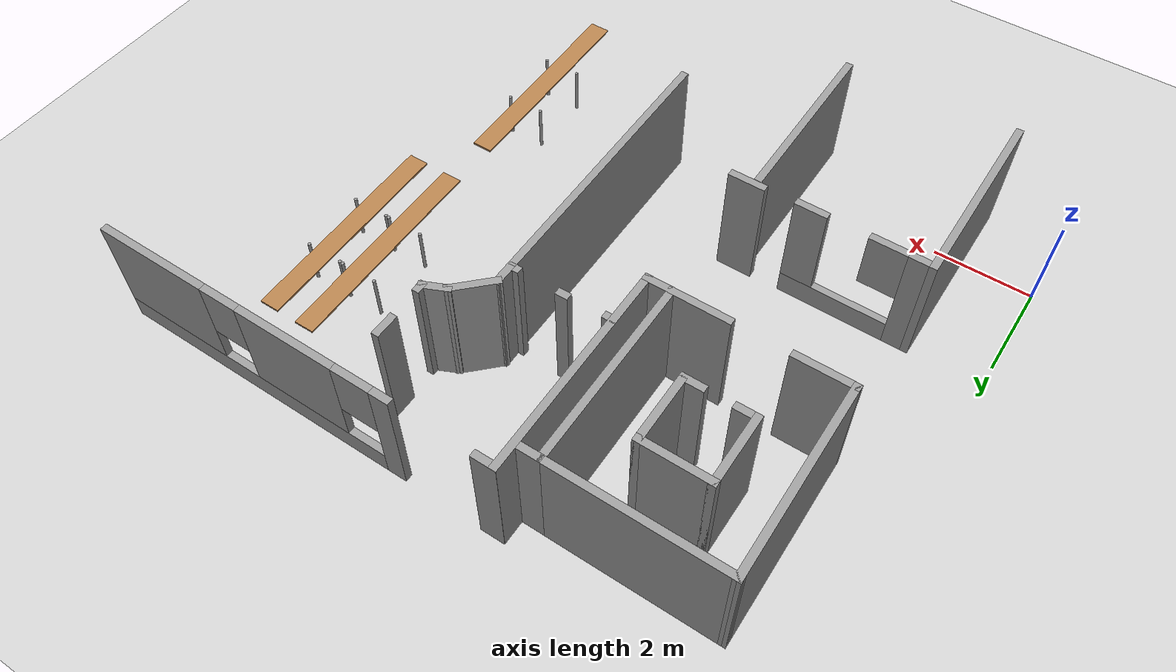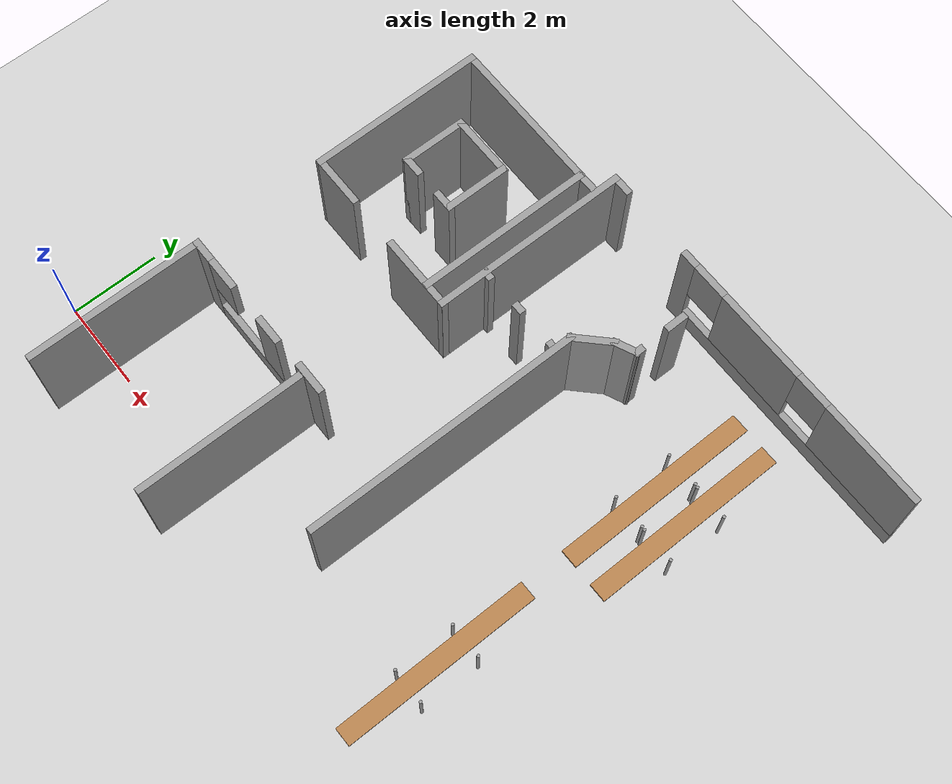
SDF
<sdf version="1.6">
 <world name="default">
  <model name="ground_plane">
   <static>1</static>
   <link name="link">
    <collision name="collision">
     <geometry><plane><normal>0 0 1</normal><size>100 100</size></plane></geometry>
     <surface><friction><ode><mu>100</mu><mu2>50</mu2></ode></friction></surface>
    </collision>
    <visual name="visual">
     <cast_shadows>0</cast_shadows>
     <geometry><plane><normal>0 0 1</normal><size>100 100</size></plane></geometry>
     <material>
      <script><uri>file://media/materials/scripts/gazebo.material</uri><name>Gazebo/Grey</name></script>
     </material>
    </visual>
   </link>
  </model>
  <model name="Parte_DX_(visione_alta_mappa)_CV1">
   <pose>7.84951 -6.02799 0 0 -0 0</pose>
   <link name="Wall_0">
    <collision name="Wall_0_Collision">
     <geometry><box><size>3.5 0.15 2.5</size></box></geometry>
     <pose>0 0 1.25 0 -0 0</pose>
    </collision>
    <visual name="Wall_0_Visual">
     <pose>0 0 1.25 0 -0 0</pose>
     <geometry><box><size>3.5 0.15 2.5</size></box></geometry>
     <material>
      <script><uri>file://media/materials/scripts/gazebo.material</uri><name>Gazebo/Grey</name></script>
      <ambient>1 1 1 1</ambient>
     </material>
    </visual>
    <pose>-4.6353 15.3082 0 0 -0 0</pose>
   </link>
   <link name="Wall_132">
    <collision name="Wall_132_Collision">
     <geometry><box><size>0.25 0.15 2.5</size></box></geometry>
     <pose>0 0 1.25 0 -0 0</pose>
    </collision>
    <visual name="Wall_132_Visual">
     <pose>0 0 1.25 0 -0 0</pose>
     <geometry><box><size>0.25 0.15 2.5</size></box></geometry>
     <material>
      <script><uri>file://media/materials/scripts/gazebo.material</uri><name>Gazebo/Grey</name></script>
      <ambient>1 1 1 1</ambient>
     </material>
    </visual>
    <pose>-1.36627 12.5347 0 0 -0 0</pose>
   </link>
   <link name="Wall_134">
    <collision name="Wall_134_Collision">
     <geometry><box><size>0.25 0.15 2.5</size></box></geometry>
     <pose>0 0 1.25 0 -0 0</pose>
    </collision>
    <visual name="Wall_134_Visual">
     <pose>0 0 1.25 0 -0 0</pose>
     <geometry><box><size>0.25 0.15 2.5</size></box></geometry>
     <material>
      <script><uri>file://media/materials/scripts/gazebo.material</uri><name>Gazebo/Grey</name></script>
      <ambient>1 1 1 1</ambient>
     </material>
    </visual>
    <pose>-0.351158 12.5347 0 0 -0 3.14159</pose>
   </link>
   <link name="Wall_136">
    <collision name="Wall_136_Collision">
     <geometry><box><size>0.25 0.15 2.5</size></box></geometry>
     <pose>0 0 1.25 0 -0 0</pose>
    </collision>
    <visual name="Wall_136_Visual">
     <pose>0 0 1.25 0 -0 0</pose>
     <geometry><box><size>0.25 0.15 2.5</size></box></geometry>
     <material>
      <script><uri>file://media/materials/scripts/gazebo.material</uri><name>Gazebo/Grey</name></script>
      <ambient>1 1 1 1</ambient>
     </material>
    </visual>
    <pose>-2.28438 12.5087 0 0 -0 0</pose>
   </link>
   <link name="Wall_180">
    <collision name="Wall_180_Collision">
     <geometry><box><size>0.75 0.15 2.5</size></box></geometry>
     <pose>0 0 1.25 0 -0 0</pose>
    </collision>
    <visual name="Wall_180_Visual">
     <pose>0 0 1.25 0 -0 0</pose>
     <geometry><box><size>0.75 0.15 2.5</size></box></geometry>
     <material>
      <script><uri>file://media/materials/scripts/gazebo.material</uri><name>Gazebo/Grey</name></script>
      <ambient>1 1 1 1</ambient>
     </material>
    </visual>
    <pose>-2.68898 8.54555 0 0 -0 3.14159</pose>
   </link>
   <link name="Wall_185">
    <collision name="Wall_185_Collision">
     <geometry><box><size>4 0.15 2.5</size></box></geometry>
     <pose>0 0 1.25 0 -0 0</pose>
    </collision>
    <visual name="Wall_185_Visual">
     <pose>0 0 1.25 0 -0 0</pose>
     <geometry><box><size>4 0.15 2.5</size></box></geometry>
     <material>
      <script><uri>file://media/materials/scripts/gazebo.material</uri><name>Gazebo/Grey</name></script>
      <ambient>1 1 1 1</ambient>
     </material>
    </visual>
    <pose>-6.31785 6.58238 0 0 -0 1.5708</pose>
   </link>
   <link name="Wall_187">
    <pose>-5.01785 8.50738 0 0 -0 0</pose>
    <visual name="Wall_187_Visual_0">
     <pose>-1.10572 0 1.25 0 -0 0</pose>
     <geometry><box><size>0.538566 0.15 2.5</size></box></geometry>
     <material>
      <script><uri>file://media/materials/scripts/gazebo.material</uri><name>Gazebo/Grey</name></script>
      <ambient>1 1 1 1</ambient>
     </material>
    </visual>
    <collision name="Wall_187_Collision_0">
     <geometry><box><size>0.538566 0.15 2.5</size></box></geometry>
     <pose>-1.10572 0 1.25 0 -0 0</pose>
    </collision>
    <visual name="Wall_187_Visual_1">
     <pose>0.269283 0 0.25 0 -0 0</pose>
     <geometry><box><size>2.21143 0.15 0.5</size></box></geometry>
     <material>
      <script><uri>file://media/materials/scripts/gazebo.material</uri><name>Gazebo/Grey</name></script>
      <ambient>1 1 1 1</ambient>
     </material>
    </visual>
    <collision name="Wall_187_Collision_1">
     <geometry><box><size>2.21143 0.15 0.5</size></box></geometry>
     <pose>0.269283 0 0.25 0 -0 0</pose>
    </collision>
    <visual name="Wall_187_Visual_2">
     <pose>1.04664 0 1.5 0 -0 0</pose>
     <geometry><box><size>0.656719 0.15 2</size></box></geometry>
     <material>
      <script><uri>file://media/materials/scripts/gazebo.material</uri><name>Gazebo/Grey</name></script>
      <ambient>1 1 1 1</ambient>
     </material>
    </visual>
    <collision name="Wall_187_Collision_2">
     <geometry><box><size>0.656719 0.15 2</size></box></geometry>
     <pose>1.04664 0 1.5 0 -0 0</pose>
    </collision>
    <visual name="Wall_187_Visual_3">
     <pose>-0.459077 0 1.9 0 -0 0</pose>
     <geometry><box><size>0.754714 0.15 1.2</size></box></geometry>
     <material>
      <script><uri>file://media/materials/scripts/gazebo.material</uri><name>Gazebo/Grey</name></script>
      <ambient>1 1 1 1</ambient>
     </material>
    </visual>
    <collision name="Wall_187_Collision_3">
     <geometry><box><size>0.754714 0.15 1.2</size></box></geometry>
     <pose>-0.459077 0 1.9 0 -0 0</pose>
    </collision>
   </link>
   <link name="Wall_189">
    <collision name="Wall_189_Collision">
     <geometry><box><size>3.75 0.15 2.5</size></box></geometry>
     <pose>0 0 1.25 0 -0 0</pose>
    </collision>
    <visual name="Wall_189_Visual">
     <pose>0 0 1.25 0 -0 0</pose>
     <geometry><box><size>3.75 0.15 2.5</size></box></geometry>
     <material>
      <script><uri>file://media/materials/scripts/gazebo.material</uri><name>Gazebo/Grey</name></script>
      <ambient>1 1 1 1</ambient>
     </material>
    </visual>
    <pose>-2.84357 6.58911 0 0 0 -1.5708</pose>
   </link>
   <link name="Wall_2">
    <collision name="Wall_2_Collision">
     <geometry><box><size>1.25 0.15 2.5</size></box></geometry>
     <pose>0 0 1.25 0 -0 0</pose>
    </collision>
    <visual name="Wall_2_Visual">
     <pose>0 0 1.25 0 -0 0</pose>
     <geometry><box><size>1.25 0.15 2.5</size></box></geometry>
     <material>
      <script><uri>file://media/materials/scripts/gazebo.material</uri><name>Gazebo/Grey</name></script>
      <ambient>1 1 1 1</ambient>
     </material>
    </visual>
    <pose>-5.73743 11.466 0 0 -0 0</pose>
   </link>
   <link name="Wall_22">
    <pose>2.9365 15.8002 0 0 -0 0</pose>
    <visual name="Wall_22_Visual_0">
     <pose>-3.04792 0 1.25 0 -0 0</pose>
     <geometry><box><size>0.404156 0.15 2.5</size></box></geometry>
     <material>
      <script><uri>file://media/materials/scripts/gazebo.material</uri><name>Gazebo/Grey</name></script>
      <ambient>1 1 1 1</ambient>
     </material>
    </visual>
    <collision name="Wall_22_Collision_0">
     <geometry><box><size>0.404156 0.15 2.5</size></box></geometry>
     <pose>-3.04792 0 1.25 0 -0 0</pose>
    </collision>
    <visual name="Wall_22_Visual_1">
     <pose>0.202078 0 0.25 0 -0 0</pose>
     <geometry><box><size>6.09584 0.15 0.5</size></box></geometry>
     <material>
      <script><uri>file://media/materials/scripts/gazebo.material</uri><name>Gazebo/Grey</name></script>
      <ambient>1 1 1 1</ambient>
     </material>
    </visual>
    <collision name="Wall_22_Collision_1">
     <geometry><box><size>6.09584 0.15 0.5</size></box></geometry>
     <pose>0.202078 0 0.25 0 -0 0</pose>
    </collision>
    <visual name="Wall_22_Visual_2">
     <pose>-0.994727 0 1.5 0 -0 0</pose>
     <geometry><box><size>2.10223 0.15 2</size></box></geometry>
     <material>
      <script><uri>file://media/materials/scripts/gazebo.material</uri><name>Gazebo/Grey</name></script>
      <ambient>1 1 1 1</ambient>
     </material>
    </visual>
    <collision name="Wall_22_Collision_2">
     <geometry><box><size>2.10223 0.15 2</size></box></geometry>
     <pose>-0.994727 0 1.5 0 -0 0</pose>
    </collision>
    <visual name="Wall_22_Visual_3">
     <pose>2.0532 0 1.5 0 -0 0</pose>
     <geometry><box><size>2.39361 0.15 2</size></box></geometry>
     <material>
      <script><uri>file://media/materials/scripts/gazebo.material</uri><name>Gazebo/Grey</name></script>
      <ambient>1 1 1 1</ambient>
     </material>
    </visual>
    <collision name="Wall_22_Collision_3">
     <geometry><box><size>2.39361 0.15 2</size></box></geometry>
     <pose>2.0532 0 1.5 0 -0 0</pose>
    </collision>
    <visual name="Wall_22_Visual_4">
     <pose>-2.44584 0 1.9 0 -0 0</pose>
     <geometry><box><size>0.8 0.15 1.2</size></box></geometry>
     <material>
      <script><uri>file://media/materials/scripts/gazebo.material</uri><name>Gazebo/Grey</name></script>
      <ambient>1 1 1 1</ambient>
     </material>
    </visual>
    <collision name="Wall_22_Collision_4">
     <geometry><box><size>0.8 0.15 1.2</size></box></geometry>
     <pose>-2.44584 0 1.9 0 -0 0</pose>
    </collision>
    <visual name="Wall_22_Visual_5">
     <pose>0.45639 0 1.9 0 -0 0</pose>
     <geometry><box><size>0.8 0.15 1.2</size></box></geometry>
     <material>
      <script><uri>file://media/materials/scripts/gazebo.material</uri><name>Gazebo/Grey</name></script>
      <ambient>1 1 1 1</ambient>
     </material>
    </visual>
    <collision name="Wall_22_Collision_5">
     <geometry><box><size>0.8 0.15 1.2</size></box></geometry>
     <pose>0.45639 0 1.9 0 -0 0</pose>
    </collision>
   </link>
   <link name="Wall_33">
    <collision name="Wall_33_Collision">
     <geometry><box><size>0.5 0.15 2.5</size></box></geometry>
     <pose>0 0 1.25 0 -0 0</pose>
    </collision>
    <visual name="Wall_33_Visual">
     <pose>0 0 1.25 0 -0 0</pose>
     <geometry><box><size>0.5 0.15 2.5</size></box></geometry>
     <material>
      <script><uri>file://media/materials/scripts/gazebo.material</uri><name>Gazebo/Grey</name></script>
      <ambient>1 1 1 1</ambient>
     </material>
    </visual>
    <pose>-2.67047 15.3073 0 0 -0 3.14159</pose>
   </link>
   <link name="Wall_39">
    <collision name="Wall_39_Collision">
     <geometry><box><size>0.5 0.15 2.5</size></box></geometry>
     <pose>0 0 1.25 0 -0 0</pose>
    </collision>
    <visual name="Wall_39_Visual">
     <pose>0 0 1.25 0 -0 0</pose>
     <geometry><box><size>0.5 0.15 2.5</size></box></geometry>
     <material>
      <script><uri>file://media/materials/scripts/gazebo.material</uri><name>Gazebo/Grey</name></script>
      <ambient>1 1 1 1</ambient>
     </material>
    </visual>
    <pose>-2.17837 15.8078 0 0 -0 0</pose>
   </link>
   <link name="Wall_4">
    <collision name="Wall_4_Collision">
     <geometry><box><size>1.75 0.15 2.5</size></box></geometry>
     <pose>0 0 1.25 0 -0 0</pose>
    </collision>
    <visual name="Wall_4_Visual">
     <pose>0 0 1.25 0 -0 0</pose>
     <geometry><box><size>1.75 0.15 2.5</size></box></geometry>
     <material>
      <script><uri>file://media/materials/scripts/gazebo.material</uri><name>Gazebo/Grey</name></script>
      <ambient>1 1 1 1</ambient>
     </material>
    </visual>
    <pose>-3.15533 11.4584 0 0 -0 0</pose>
   </link>
   <link name="Wall_43">
    <collision name="Wall_43_Collision">
     <geometry><box><size>3.99225 0.15 2.5</size></box></geometry>
     <pose>0 0 1.25 0 -0 0</pose>
    </collision>
    <visual name="Wall_43_Visual">
     <pose>0 0 1.25 0 -0 0</pose>
     <geometry><box><size>3.99225 0.15 2.5</size></box></geometry>
     <material>
      <script><uri>file://media/materials/scripts/gazebo.material</uri><name>Gazebo/Grey</name></script>
      <ambient>1 1 1 1</ambient>
     </material>
    </visual>
    <pose>-6.29886 13.3871 0 0 0 -1.56484</pose>
   </link>
   <link name="Wall_45">
    <collision name="Wall_45_Collision">
     <geometry><box><size>4.5 0.15 2.5</size></box></geometry>
     <pose>0 0 1.25 0 -0 0</pose>
    </collision>
    <visual name="Wall_45_Visual">
     <pose>0 0 1.25 0 -0 0</pose>
     <geometry><box><size>4.5 0.15 2.5</size></box></geometry>
     <material>
      <script><uri>file://media/materials/scripts/gazebo.material</uri><name>Gazebo/Grey</name></script>
      <ambient>1 1 1 1</ambient>
     </material>
    </visual>
    <pose>-2.35621 13.6319 0 0 0 -1.5708</pose>
   </link>
   <link name="Wall_57">
    <collision name="Wall_57_Collision">
     <geometry><box><size>1.5 0.15 2.5</size></box></geometry>
     <pose>0 0 1.25 0 -0 0</pose>
    </collision>
    <visual name="Wall_57_Visual">
     <pose>0 0 1.25 0 -0 0</pose>
     <geometry><box><size>1.5 0.15 2.5</size></box></geometry>
     <material>
      <script><uri>file://media/materials/scripts/gazebo.material</uri><name>Gazebo/Grey</name></script>
      <ambient>1 1 1 1</ambient>
     </material>
    </visual>
    <pose>-4.57569 14.1901 0 0 -0 0</pose>
   </link>
   <link name="Wall_60">
    <collision name="Wall_60_Collision">
     <geometry><box><size>1.5 0.15 2.5</size></box></geometry>
     <pose>0 0 1.25 0 -0 0</pose>
    </collision>
    <visual name="Wall_60_Visual">
     <pose>0 0 1.25 0 -0 0</pose>
     <geometry><box><size>1.5 0.15 2.5</size></box></geometry>
     <material>
      <script><uri>file://media/materials/scripts/gazebo.material</uri><name>Gazebo/Grey</name></script>
      <ambient>1 1 1 1</ambient>
     </material>
    </visual>
    <pose>-3.90069 13.5151 0 0 0 -1.5708</pose>
   </link>
   <link name="Wall_62">
    <collision name="Wall_62_Collision">
     <geometry><box><size>1.5 0.15 2.5</size></box></geometry>
     <pose>0 0 1.25 0 -0 0</pose>
    </collision>
    <visual name="Wall_62_Visual">
     <pose>0 0 1.25 0 -0 0</pose>
     <geometry><box><size>1.5 0.15 2.5</size></box></geometry>
     <material>
      <script><uri>file://media/materials/scripts/gazebo.material</uri><name>Gazebo/Grey</name></script>
      <ambient>1 1 1 1</ambient>
     </material>
    </visual>
    <pose>-5.25069 13.5151 0 0 0 -1.5708</pose>
   </link>
   <link name="Wall_64">
    <collision name="Wall_64_Collision">
     <geometry><box><size>0.5 0.15 2.5</size></box></geometry>
     <pose>0 0 1.25 0 -0 0</pose>
    </collision>
    <visual name="Wall_64_Visual">
     <pose>0 0 1.25 0 -0 0</pose>
     <geometry><box><size>0.5 0.15 2.5</size></box></geometry>
     <material>
      <script><uri>file://media/materials/scripts/gazebo.material</uri><name>Gazebo/Grey</name></script>
      <ambient>1 1 1 1</ambient>
     </material>
    </visual>
    <pose>-5.07569 12.8401 0 0 -0 0</pose>
   </link>
   <link name="Wall_66">
    <collision name="Wall_66_Collision">
     <geometry><box><size>0.5 0.15 2.5</size></box></geometry>
     <pose>0 0 1.25 0 -0 0</pose>
    </collision>
    <visual name="Wall_66_Visual">
     <pose>0 0 1.25 0 -0 0</pose>
     <geometry><box><size>0.5 0.15 2.5</size></box></geometry>
     <material>
      <script><uri>file://media/materials/scripts/gazebo.material</uri><name>Gazebo/Grey</name></script>
      <ambient>1 1 1 1</ambient>
     </material>
    </visual>
    <pose>-4.07569 12.8401 0 0 -0 3.14159</pose>
   </link>
   <link name="Wall_7">
    <collision name="Wall_7_Collision">
     <geometry><box><size>3.98011 0.15 2.5</size></box></geometry>
     <pose>0 0 1.25 0 -0 0</pose>
    </collision>
    <visual name="Wall_7_Visual">
     <pose>0 0 1.25 0 -0 0</pose>
     <geometry><box><size>3.98011 0.15 2.5</size></box></geometry>
     <material>
      <script><uri>file://media/materials/scripts/gazebo.material</uri><name>Gazebo/Grey</name></script>
      <ambient>1 1 1 1</ambient>
     </material>
    </visual>
    <pose>-2.84547 13.3872 0 0 0 -1.5708</pose>
   </link>
   <link name="Wall_81">
    <collision name="Wall_81_Collision">
     <geometry><box><size>0.5 0.15 2.5</size></box></geometry>
     <pose>0 0 1.25 0 -0 0</pose>
    </collision>
    <visual name="Wall_81_Visual">
     <pose>0 0 1.25 0 -0 0</pose>
     <geometry><box><size>0.5 0.15 2.5</size></box></geometry>
     <material>
      <script><uri>file://media/materials/scripts/gazebo.material</uri><name>Gazebo/Grey</name></script>
      <ambient>1 1 1 1</ambient>
     </material>
    </visual>
    <pose>0.724497 14.7006 0 0 0 -1.5708</pose>
   </link>
   <link name="Wall_83">
    <collision name="Wall_83_Collision">
     <geometry><box><size>0.25 0.15 2.5</size></box></geometry>
     <pose>0 0 1.25 0 -0 0</pose>
    </collision>
    <visual name="Wall_83_Visual">
     <pose>0 0 1.25 0 -0 0</pose>
     <geometry><box><size>0.25 0.15 2.5</size></box></geometry>
     <material>
      <script><uri>file://media/materials/scripts/gazebo.material</uri><name>Gazebo/Grey</name></script>
      <ambient>1 1 1 1</ambient>
     </material>
    </visual>
    <pose>0.735648 13.7547 0 0 -0 1.5708</pose>
   </link>
   <link name="Wall_85">
    <collision name="Wall_85_Collision">
     <geometry><box><size>1 0.15 2.5</size></box></geometry>
     <pose>0 0 1.25 0 -0 0</pose>
    </collision>
    <visual name="Wall_85_Visual">
     <pose>0 0 1.25 0 -0 0</pose>
     <geometry><box><size>1 0.15 2.5</size></box></geometry>
     <material>
      <script><uri>file://media/materials/scripts/gazebo.material</uri><name>Gazebo/Grey</name></script>
      <ambient>1 1 1 1</ambient>
     </material>
    </visual>
    <pose>0.021957 13.2154 0 0 -0 0.785398</pose>
   </link>
   <link name="Wall_86">
    <collision name="Wall_86_Collision">
     <geometry><box><size>0.604255 0.15 2.5</size></box></geometry>
     <pose>0 0 1.25 0 -0 0</pose>
    </collision>
    <visual name="Wall_86_Visual">
     <pose>0 0 1.25 0 -0 0</pose>
     <geometry><box><size>0.604255 0.15 2.5</size></box></geometry>
     <material>
      <script><uri>file://media/materials/scripts/gazebo.material</uri><name>Gazebo/Grey</name></script>
      <ambient>1 1 1 1</ambient>
     </material>
    </visual>
    <pose>0.529062 13.6103 0 0 -0 0.428581</pose>
   </link>
   <link name="Wall_88">
    <collision name="Wall_88_Collision">
     <geometry><box><size>6.25 0.15 2.5</size></box></geometry>
     <pose>0 0 1.25 0 -0 0</pose>
    </collision>
    <visual name="Wall_88_Visual">
     <pose>0 0 1.25 0 -0 0</pose>
     <geometry><box><size>6.25 0.15 2.5</size></box></geometry>
     <material>
      <script><uri>file://media/materials/scripts/gazebo.material</uri><name>Gazebo/Grey</name></script>
      <ambient>1 1 1 1</ambient>
     </material>
    </visual>
    <pose>-0.278564 9.86488 0 0 0 -1.5708</pose>
   </link>
   <static>1</static>
  </model>
  <model name="tablesclass_clone_20">
   <link name="link">
    <inertial>
     <inertia><ixx>0</ixx><ixy>0</ixy><ixz>0</ixz><iyy>0</iyy><iyz>0</iyz><izz>0</izz></inertia>
     <mass>1.73923</mass>
    </inertial>
    <visual name="front_right_leg">
     <pose>0.68 -0.38 0.5 0 -0 0</pose>
     <geometry><cylinder><radius>0.0324505</radius><length>1</length></cylinder></geometry>
     <material>
      <script><uri>file://media/materials/scripts/gazebo.material</uri><name>Gazebo/Grey</name></script>
      <ambient>0.3 0.3 0.3 1</ambient>
      <diffuse>0.7 0.7 0.7 1</diffuse>
      <specular>0.01 0.01 0.01 1</specular>
      <emissive>0 0 0 1</emissive>
     </material>
    </visual>
    <visual name="back_left_leg">
     <pose>-0.68 0.38 0.5 0 -0 0</pose>
     <geometry><cylinder><radius>0.0324505</radius><length>1</length></cylinder></geometry>
     <material>
      <script><uri>file://media/materials/scripts/gazebo.material</uri><name>Gazebo/Grey</name></script>
      <ambient>0.3 0.3 0.3 1</ambient>
      <diffuse>0.7 0.7 0.7 1</diffuse>
      <specular>0.01 0.01 0.01 1</specular>
      <emissive>0 0 0 1</emissive>
     </material>
    </visual>
    <visual name="front_left_leg">
     <pose>0.68 0.38 0.5 0 -0 0</pose>
     <geometry><cylinder><radius>0.0324505</radius><length>1</length></cylinder></geometry>
     <material>
      <script><uri>file://media/materials/scripts/gazebo.material</uri><name>Gazebo/Grey</name></script>
      <ambient>0.3 0.3 0.3 1</ambient>
      <diffuse>0.7 0.7 0.7 1</diffuse>
      <specular>0.01 0.01 0.01 1</specular>
      <emissive>0 0 0 1</emissive>
     </material>
    </visual>
    <visual name="visual1">
     <pose>0 0 1 0 -0 0</pose>
     <geometry><box><size>4.38513 0.412326 0.04</size></box></geometry>
     <material>
      <script><uri>file://media/materials/scripts/gazebo.material</uri><name>Gazebo/Wood</name></script>
      <ambient>1 1 1 1</ambient>
      <diffuse>1 1 1 1</diffuse>
      <specular>0.2 0.2 0.2 1</specular>
      <emissive>0 0 0 1</emissive>
     </material>
    </visual>
    <visual name="back_right_leg">
     <pose>-0.68 -0.38 0.5 0 -0 0</pose>
     <geometry><cylinder><radius>0.0324505</radius><length>1</length></cylinder></geometry>
     <material>
      <script><uri>file://media/materials/scripts/gazebo.material</uri><name>Gazebo/Grey</name></script>
      <ambient>0.3 0.3 0.3 1</ambient>
      <diffuse>0.7 0.7 0.7 1</diffuse>
      <specular>0.01 0.01 0.01 1</specular>
      <emissive>0 0 0 1</emissive>
     </material>
    </visual>
    <collision name="front_left_leg">
     <pose>0.68 0.38 0.5 0 -0 0</pose>
     <geometry><cylinder><radius>0.03245</radius><length>1</length></cylinder></geometry>
     <surface>
      <friction>
       <ode><mu>1</mu><mu2>1</mu2><fdir1>0 0 0</fdir1><slip1>0</slip1><slip2>0</slip2></ode>
       <torsional>
        <coefficient>1</coefficient>
        <patch_radius>0</patch_radius>
        <surface_radius>0</surface_radius>
        <use_patch_radius>1</use_patch_radius>
        <ode><slip>0</slip></ode>
       </torsional>
      </friction>
      <bounce><restitution_coefficient>0</restitution_coefficient><threshold>1e+06</threshold></bounce>
      <contact>
       <collide_without_contact>0</collide_without_contact>
       <collide_without_contact_bitmask>1</collide_without_contact_bitmask>
       <collide_bitmask>1</collide_bitmask>
       <ode>
        <soft_cfm>0</soft_cfm>
        <soft_erp>0.2</soft_erp>
        <kp>1e+13</kp>
        <kd>1</kd>
        <max_vel>0.01</max_vel>
        <min_depth>0</min_depth>
       </ode>
       <bullet>
        <split_impulse>1</split_impulse>
        <split_impulse_penetration_threshold>-0.01</split_impulse_penetration_threshold>
        <soft_cfm>0</soft_cfm>
        <soft_erp>0.2</soft_erp>
        <kp>1e+13</kp>
        <kd>1</kd>
       </bullet>
      </contact>
     </surface>
    </collision>
    <collision name="front_right_leg">
     <pose>0.68 -0.38 0.5 0 -0 0</pose>
     <geometry><cylinder><radius>0.03245</radius><length>1</length></cylinder></geometry>
     <surface>
      <friction>
       <ode><mu>1</mu><mu2>1</mu2><fdir1>0 0 0</fdir1><slip1>0</slip1><slip2>0</slip2></ode>
       <torsional>
        <coefficient>1</coefficient>
        <patch_radius>0</patch_radius>
        <surface_radius>0</surface_radius>
        <use_patch_radius>1</use_patch_radius>
        <ode><slip>0</slip></ode>
       </torsional>
      </friction>
      <bounce><restitution_coefficient>0</restitution_coefficient><threshold>1e+06</threshold></bounce>
      <contact>
       <collide_without_contact>0</collide_without_contact>
       <collide_without_contact_bitmask>1</collide_without_contact_bitmask>
       <collide_bitmask>1</collide_bitmask>
       <ode>
        <soft_cfm>0</soft_cfm>
        <soft_erp>0.2</soft_erp>
        <kp>1e+13</kp>
        <kd>1</kd>
        <max_vel>0.01</max_vel>
        <min_depth>0</min_depth>
       </ode>
       <bullet>
        <split_impulse>1</split_impulse>
        <split_impulse_penetration_threshold>-0.01</split_impulse_penetration_threshold>
        <soft_cfm>0</soft_cfm>
        <soft_erp>0.2</soft_erp>
        <kp>1e+13</kp>
        <kd>1</kd>
       </bullet>
      </contact>
     </surface>
    </collision>
    <collision name="back_left_leg">
     <pose>-0.68 0.38 0.5 0 -0 0</pose>
     <geometry><cylinder><radius>0.03245</radius><length>1</length></cylinder></geometry>
     <surface>
      <friction>
       <ode><mu>1</mu><mu2>1</mu2><fdir1>0 0 0</fdir1><slip1>0</slip1><slip2>0</slip2></ode>
       <torsional>
        <coefficient>1</coefficient>
        <patch_radius>0</patch_radius>
        <surface_radius>0</surface_radius>
        <use_patch_radius>1</use_patch_radius>
        <ode><slip>0</slip></ode>
       </torsional>
      </friction>
      <bounce><restitution_coefficient>0</restitution_coefficient><threshold>1e+06</threshold></bounce>
      <contact>
       <collide_without_contact>0</collide_without_contact>
       <collide_without_contact_bitmask>1</collide_without_contact_bitmask>
       <collide_bitmask>1</collide_bitmask>
       <ode>
        <soft_cfm>0</soft_cfm>
        <soft_erp>0.2</soft_erp>
        <kp>1e+13</kp>
        <kd>1</kd>
        <max_vel>0.01</max_vel>
        <min_depth>0</min_depth>
       </ode>
       <bullet>
        <split_impulse>1</split_impulse>
        <split_impulse_penetration_threshold>-0.01</split_impulse_penetration_threshold>
        <soft_cfm>0</soft_cfm>
        <soft_erp>0.2</soft_erp>
        <kp>1e+13</kp>
        <kd>1</kd>
       </bullet>
      </contact>
     </surface>
    </collision>
    <collision name="back_right_leg">
     <pose>-0.68 -0.38 0.5 0 -0 0</pose>
     <geometry><cylinder><radius>0.03245</radius><length>1</length></cylinder></geometry>
     <surface>
      <friction>
       <ode><mu>1</mu><mu2>1</mu2><fdir1>0 0 0</fdir1><slip1>0</slip1><slip2>0</slip2></ode>
       <torsional>
        <coefficient>1</coefficient>
        <patch_radius>0</patch_radius>
        <surface_radius>0</surface_radius>
        <use_patch_radius>1</use_patch_radius>
        <ode><slip>0</slip></ode>
       </torsional>
      </friction>
      <bounce><restitution_coefficient>0</restitution_coefficient><threshold>1e+06</threshold></bounce>
      <contact>
       <collide_without_contact>0</collide_without_contact>
       <collide_without_contact_bitmask>1</collide_without_contact_bitmask>
       <collide_bitmask>1</collide_bitmask>
       <ode>
        <soft_cfm>0</soft_cfm>
        <soft_erp>0.2</soft_erp>
        <kp>1e+13</kp>
        <kd>1</kd>
        <max_vel>0.01</max_vel>
        <min_depth>0</min_depth>
       </ode>
       <bullet>
        <split_impulse>1</split_impulse>
        <split_impulse_penetration_threshold>-0.01</split_impulse_penetration_threshold>
        <soft_cfm>0</soft_cfm>
        <soft_erp>0.2</soft_erp>
        <kp>1e+13</kp>
        <kd>1</kd>
       </bullet>
      </contact>
     </surface>
    </collision>
    <collision name="surface">
     <pose>0 0 1 0 -0 0</pose>
     <geometry><box><size>4.69836 0.412326 0.03</size></box></geometry>
     <surface>
      <friction>
       <ode><mu>0.6</mu><mu2>0.6</mu2><fdir1>0 0 0</fdir1><slip1>0</slip1><slip2>0</slip2></ode>
       <torsional>
        <coefficient>1</coefficient>
        <patch_radius>0</patch_radius>
        <surface_radius>0</surface_radius>
        <use_patch_radius>1</use_patch_radius>
        <ode><slip>0</slip></ode>
       </torsional>
      </friction>
      <bounce><restitution_coefficient>0</restitution_coefficient><threshold>1e+06</threshold></bounce>
      <contact>
       <collide_without_contact>0</collide_without_contact>
       <collide_without_contact_bitmask>1</collide_without_contact_bitmask>
       <collide_bitmask>1</collide_bitmask>
       <ode>
        <soft_cfm>0</soft_cfm>
        <soft_erp>0.2</soft_erp>
        <kp>1e+13</kp>
        <kd>1</kd>
        <max_vel>0.01</max_vel>
        <min_depth>0</min_depth>
       </ode>
       <bullet>
        <split_impulse>1</split_impulse>
        <split_impulse_penetration_threshold>-0.01</split_impulse_penetration_threshold>
        <soft_cfm>0</soft_cfm>
        <soft_erp>0.2</soft_erp>
        <kp>1e+13</kp>
        <kd>1</kd>
       </bullet>
      </contact>
     </surface>
    </collision>
   </link>
   <static>0</static>
   <pose>10.6333 1.24513 -3e-06 -0 -3e-06 -1.56373</pose>
  </model>
  <model name="tablesclass_clone_21">
   <link name="link">
    <inertial>
     <inertia><ixx>0</ixx><ixy>0</ixy><ixz>0</ixz><iyy>0</iyy><iyz>0</iyz><izz>0</izz></inertia>
     <mass>1.73923</mass>
    </inertial>
    <visual name="front_right_leg">
     <pose>0.68 -0.38 0.5 0 -0 0</pose>
     <geometry><cylinder><radius>0.0324505</radius><length>1</length></cylinder></geometry>
     <material>
      <script><uri>file://media/materials/scripts/gazebo.material</uri><name>Gazebo/Grey</name></script>
      <ambient>0.3 0.3 0.3 1</ambient>
      <diffuse>0.7 0.7 0.7 1</diffuse>
      <specular>0.01 0.01 0.01 1</specular>
      <emissive>0 0 0 1</emissive>
     </material>
    </visual>
    <visual name="back_left_leg">
     <pose>-0.68 0.38 0.5 0 -0 0</pose>
     <geometry><cylinder><radius>0.0324505</radius><length>1</length></cylinder></geometry>
     <material>
      <script><uri>file://media/materials/scripts/gazebo.material</uri><name>Gazebo/Grey</name></script>
      <ambient>0.3 0.3 0.3 1</ambient>
      <diffuse>0.7 0.7 0.7 1</diffuse>
      <specular>0.01 0.01 0.01 1</specular>
      <emissive>0 0 0 1</emissive>
     </material>
    </visual>
    <visual name="front_left_leg">
     <pose>0.68 0.38 0.5 0 -0 0</pose>
     <geometry><cylinder><radius>0.0324505</radius><length>1</length></cylinder></geometry>
     <material>
      <script><uri>file://media/materials/scripts/gazebo.material</uri><name>Gazebo/Grey</name></script>
      <ambient>0.3 0.3 0.3 1</ambient>
      <diffuse>0.7 0.7 0.7 1</diffuse>
      <specular>0.01 0.01 0.01 1</specular>
      <emissive>0 0 0 1</emissive>
     </material>
    </visual>
    <visual name="visual1">
     <pose>0 0 1 0 -0 0</pose>
     <geometry><box><size>4.38513 0.412326 0.04</size></box></geometry>
     <material>
      <script><uri>file://media/materials/scripts/gazebo.material</uri><name>Gazebo/Wood</name></script>
      <ambient>1 1 1 1</ambient>
      <diffuse>1 1 1 1</diffuse>
      <specular>0.2 0.2 0.2 1</specular>
      <emissive>0 0 0 1</emissive>
     </material>
    </visual>
    <visual name="back_right_leg">
     <pose>-0.68 -0.38 0.5 0 -0 0</pose>
     <geometry><cylinder><radius>0.0324505</radius><length>1</length></cylinder></geometry>
     <material>
      <script><uri>file://media/materials/scripts/gazebo.material</uri><name>Gazebo/Grey</name></script>
      <ambient>0.3 0.3 0.3 1</ambient>
      <diffuse>0.7 0.7 0.7 1</diffuse>
      <specular>0.01 0.01 0.01 1</specular>
      <emissive>0 0 0 1</emissive>
     </material>
    </visual>
    <collision name="front_left_leg">
     <pose>0.68 0.38 0.5 0 -0 0</pose>
     <geometry><cylinder><radius>0.03245</radius><length>1</length></cylinder></geometry>
     <surface>
      <friction>
       <ode><mu>1</mu><mu2>1</mu2><fdir1>0 0 0</fdir1><slip1>0</slip1><slip2>0</slip2></ode>
       <torsional>
        <coefficient>1</coefficient>
        <patch_radius>0</patch_radius>
        <surface_radius>0</surface_radius>
        <use_patch_radius>1</use_patch_radius>
        <ode><slip>0</slip></ode>
       </torsional>
      </friction>
      <bounce><restitution_coefficient>0</restitution_coefficient><threshold>1e+06</threshold></bounce>
      <contact>
       <collide_without_contact>0</collide_without_contact>
       <collide_without_contact_bitmask>1</collide_without_contact_bitmask>
       <collide_bitmask>1</collide_bitmask>
       <ode>
        <soft_cfm>0</soft_cfm>
        <soft_erp>0.2</soft_erp>
        <kp>1e+13</kp>
        <kd>1</kd>
        <max_vel>0.01</max_vel>
        <min_depth>0</min_depth>
       </ode>
       <bullet>
        <split_impulse>1</split_impulse>
        <split_impulse_penetration_threshold>-0.01</split_impulse_penetration_threshold>
        <soft_cfm>0</soft_cfm>
        <soft_erp>0.2</soft_erp>
        <kp>1e+13</kp>
        <kd>1</kd>
       </bullet>
      </contact>
     </surface>
    </collision>
    <collision name="front_right_leg">
     <pose>0.68 -0.38 0.5 0 -0 0</pose>
     <geometry><cylinder><radius>0.03245</radius><length>1</length></cylinder></geometry>
     <surface>
      <friction>
       <ode><mu>1</mu><mu2>1</mu2><fdir1>0 0 0</fdir1><slip1>0</slip1><slip2>0</slip2></ode>
       <torsional>
        <coefficient>1</coefficient>
        <patch_radius>0</patch_radius>
        <surface_radius>0</surface_radius>
        <use_patch_radius>1</use_patch_radius>
        <ode><slip>0</slip></ode>
       </torsional>
      </friction>
      <bounce><restitution_coefficient>0</restitution_coefficient><threshold>1e+06</threshold></bounce>
      <contact>
       <collide_without_contact>0</collide_without_contact>
       <collide_without_contact_bitmask>1</collide_without_contact_bitmask>
       <collide_bitmask>1</collide_bitmask>
       <ode>
        <soft_cfm>0</soft_cfm>
        <soft_erp>0.2</soft_erp>
        <kp>1e+13</kp>
        <kd>1</kd>
        <max_vel>0.01</max_vel>
        <min_depth>0</min_depth>
       </ode>
       <bullet>
        <split_impulse>1</split_impulse>
        <split_impulse_penetration_threshold>-0.01</split_impulse_penetration_threshold>
        <soft_cfm>0</soft_cfm>
        <soft_erp>0.2</soft_erp>
        <kp>1e+13</kp>
        <kd>1</kd>
       </bullet>
      </contact>
     </surface>
    </collision>
    <collision name="back_left_leg">
     <pose>-0.68 0.38 0.5 0 -0 0</pose>
     <geometry><cylinder><radius>0.03245</radius><length>1</length></cylinder></geometry>
     <surface>
      <friction>
       <ode><mu>1</mu><mu2>1</mu2><fdir1>0 0 0</fdir1><slip1>0</slip1><slip2>0</slip2></ode>
       <torsional>
        <coefficient>1</coefficient>
        <patch_radius>0</patch_radius>
        <surface_radius>0</surface_radius>
        <use_patch_radius>1</use_patch_radius>
        <ode><slip>0</slip></ode>
       </torsional>
      </friction>
      <bounce><restitution_coefficient>0</restitution_coefficient><threshold>1e+06</threshold></bounce>
      <contact>
       <collide_without_contact>0</collide_without_contact>
       <collide_without_contact_bitmask>1</collide_without_contact_bitmask>
       <collide_bitmask>1</collide_bitmask>
       <ode>
        <soft_cfm>0</soft_cfm>
        <soft_erp>0.2</soft_erp>
        <kp>1e+13</kp>
        <kd>1</kd>
        <max_vel>0.01</max_vel>
        <min_depth>0</min_depth>
       </ode>
       <bullet>
        <split_impulse>1</split_impulse>
        <split_impulse_penetration_threshold>-0.01</split_impulse_penetration_threshold>
        <soft_cfm>0</soft_cfm>
        <soft_erp>0.2</soft_erp>
        <kp>1e+13</kp>
        <kd>1</kd>
       </bullet>
      </contact>
     </surface>
    </collision>
    <collision name="back_right_leg">
     <pose>-0.68 -0.38 0.5 0 -0 0</pose>
     <geometry><cylinder><radius>0.03245</radius><length>1</length></cylinder></geometry>
     <surface>
      <friction>
       <ode><mu>1</mu><mu2>1</mu2><fdir1>0 0 0</fdir1><slip1>0</slip1><slip2>0</slip2></ode>
       <torsional>
        <coefficient>1</coefficient>
        <patch_radius>0</patch_radius>
        <surface_radius>0</surface_radius>
        <use_patch_radius>1</use_patch_radius>
        <ode><slip>0</slip></ode>
       </torsional>
      </friction>
      <bounce><restitution_coefficient>0</restitution_coefficient><threshold>1e+06</threshold></bounce>
      <contact>
       <collide_without_contact>0</collide_without_contact>
       <collide_without_contact_bitmask>1</collide_without_contact_bitmask>
       <collide_bitmask>1</collide_bitmask>
       <ode>
        <soft_cfm>0</soft_cfm>
        <soft_erp>0.2</soft_erp>
        <kp>1e+13</kp>
        <kd>1</kd>
        <max_vel>0.01</max_vel>
        <min_depth>0</min_depth>
       </ode>
       <bullet>
        <split_impulse>1</split_impulse>
        <split_impulse_penetration_threshold>-0.01</split_impulse_penetration_threshold>
        <soft_cfm>0</soft_cfm>
        <soft_erp>0.2</soft_erp>
        <kp>1e+13</kp>
        <kd>1</kd>
       </bullet>
      </contact>
     </surface>
    </collision>
    <collision name="surface">
     <pose>0 0 1 0 -0 0</pose>
     <geometry><box><size>4.69836 0.412326 0.03</size></box></geometry>
     <surface>
      <friction>
       <ode><mu>0.6</mu><mu2>0.6</mu2><fdir1>0 0 0</fdir1><slip1>0</slip1><slip2>0</slip2></ode>
       <torsional>
        <coefficient>1</coefficient>
        <patch_radius>0</patch_radius>
        <surface_radius>0</surface_radius>
        <use_patch_radius>1</use_patch_radius>
        <ode><slip>0</slip></ode>
       </torsional>
      </friction>
      <bounce><restitution_coefficient>0</restitution_coefficient><threshold>1e+06</threshold></bounce>
      <contact>
       <collide_without_contact>0</collide_without_contact>
       <collide_without_contact_bitmask>1</collide_without_contact_bitmask>
       <collide_bitmask>1</collide_bitmask>
       <ode>
        <soft_cfm>0</soft_cfm>
        <soft_erp>0.2</soft_erp>
        <kp>1e+13</kp>
        <kd>1</kd>
        <max_vel>0.01</max_vel>
        <min_depth>0</min_depth>
       </ode>
       <bullet>
        <split_impulse>1</split_impulse>
        <split_impulse_penetration_threshold>-0.01</split_impulse_penetration_threshold>
        <soft_cfm>0</soft_cfm>
        <soft_erp>0.2</soft_erp>
        <kp>1e+13</kp>
        <kd>1</kd>
       </bullet>
      </contact>
     </surface>
    </collision>
   </link>
   <static>0</static>
   <pose>11.4512 6.60808 -9e-06 -0 1e-06 -1.56379</pose>
  </model>
  <model name="tablesclass_clone_22">
   <link name="link">
    <inertial>
     <inertia><ixx>0</ixx><ixy>0</ixy><ixz>0</ixz><iyy>0</iyy><iyz>0</iyz><izz>0</izz></inertia>
     <mass>1.73923</mass>
    </inertial>
    <visual name="front_right_leg">
     <pose>0.68 -0.38 0.5 0 -0 0</pose>
     <geometry><cylinder><radius>0.0324505</radius><length>1</length></cylinder></geometry>
     <material>
      <script><uri>file://media/materials/scripts/gazebo.material</uri><name>Gazebo/Grey</name></script>
      <ambient>0.3 0.3 0.3 1</ambient>
      <diffuse>0.7 0.7 0.7 1</diffuse>
      <specular>0.01 0.01 0.01 1</specular>
      <emissive>0 0 0 1</emissive>
     </material>
    </visual>
    <visual name="back_left_leg">
     <pose>-0.68 0.38 0.5 0 -0 0</pose>
     <geometry><cylinder><radius>0.0324505</radius><length>1</length></cylinder></geometry>
     <material>
      <script><uri>file://media/materials/scripts/gazebo.material</uri><name>Gazebo/Grey</name></script>
      <ambient>0.3 0.3 0.3 1</ambient>
      <diffuse>0.7 0.7 0.7 1</diffuse>
      <specular>0.01 0.01 0.01 1</specular>
      <emissive>0 0 0 1</emissive>
     </material>
    </visual>
    <visual name="front_left_leg">
     <pose>0.68 0.38 0.5 0 -0 0</pose>
     <geometry><cylinder><radius>0.0324505</radius><length>1</length></cylinder></geometry>
     <material>
      <script><uri>file://media/materials/scripts/gazebo.material</uri><name>Gazebo/Grey</name></script>
      <ambient>0.3 0.3 0.3 1</ambient>
      <diffuse>0.7 0.7 0.7 1</diffuse>
      <specular>0.01 0.01 0.01 1</specular>
      <emissive>0 0 0 1</emissive>
     </material>
    </visual>
    <visual name="visual1">
     <pose>0 0 1 0 -0 0</pose>
     <geometry><box><size>4.38513 0.412326 0.04</size></box></geometry>
     <material>
      <script><uri>file://media/materials/scripts/gazebo.material</uri><name>Gazebo/Wood</name></script>
      <ambient>1 1 1 1</ambient>
      <diffuse>1 1 1 1</diffuse>
      <specular>0.2 0.2 0.2 1</specular>
      <emissive>0 0 0 1</emissive>
     </material>
    </visual>
    <visual name="back_right_leg">
     <pose>-0.68 -0.38 0.5 0 -0 0</pose>
     <geometry><cylinder><radius>0.0324505</radius><length>1</length></cylinder></geometry>
     <material>
      <script><uri>file://media/materials/scripts/gazebo.material</uri><name>Gazebo/Grey</name></script>
      <ambient>0.3 0.3 0.3 1</ambient>
      <diffuse>0.7 0.7 0.7 1</diffuse>
      <specular>0.01 0.01 0.01 1</specular>
      <emissive>0 0 0 1</emissive>
     </material>
    </visual>
    <collision name="front_left_leg">
     <pose>0.68 0.38 0.5 0 -0 0</pose>
     <geometry><cylinder><radius>0.03245</radius><length>1</length></cylinder></geometry>
     <surface>
      <friction>
       <ode><mu>1</mu><mu2>1</mu2><fdir1>0 0 0</fdir1><slip1>0</slip1><slip2>0</slip2></ode>
       <torsional>
        <coefficient>1</coefficient>
        <patch_radius>0</patch_radius>
        <surface_radius>0</surface_radius>
        <use_patch_radius>1</use_patch_radius>
        <ode><slip>0</slip></ode>
       </torsional>
      </friction>
      <bounce><restitution_coefficient>0</restitution_coefficient><threshold>1e+06</threshold></bounce>
      <contact>
       <collide_without_contact>0</collide_without_contact>
       <collide_without_contact_bitmask>1</collide_without_contact_bitmask>
       <collide_bitmask>1</collide_bitmask>
       <ode>
        <soft_cfm>0</soft_cfm>
        <soft_erp>0.2</soft_erp>
        <kp>1e+13</kp>
        <kd>1</kd>
        <max_vel>0.01</max_vel>
        <min_depth>0</min_depth>
       </ode>
       <bullet>
        <split_impulse>1</split_impulse>
        <split_impulse_penetration_threshold>-0.01</split_impulse_penetration_threshold>
        <soft_cfm>0</soft_cfm>
        <soft_erp>0.2</soft_erp>
        <kp>1e+13</kp>
        <kd>1</kd>
       </bullet>
      </contact>
     </surface>
    </collision>
    <collision name="front_right_leg">
     <pose>0.68 -0.38 0.5 0 -0 0</pose>
     <geometry><cylinder><radius>0.03245</radius><length>1</length></cylinder></geometry>
     <surface>
      <friction>
       <ode><mu>1</mu><mu2>1</mu2><fdir1>0 0 0</fdir1><slip1>0</slip1><slip2>0</slip2></ode>
       <torsional>
        <coefficient>1</coefficient>
        <patch_radius>0</patch_radius>
        <surface_radius>0</surface_radius>
        <use_patch_radius>1</use_patch_radius>
        <ode><slip>0</slip></ode>
       </torsional>
      </friction>
      <bounce><restitution_coefficient>0</restitution_coefficient><threshold>1e+06</threshold></bounce>
      <contact>
       <collide_without_contact>0</collide_without_contact>
       <collide_without_contact_bitmask>1</collide_without_contact_bitmask>
       <collide_bitmask>1</collide_bitmask>
       <ode>
        <soft_cfm>0</soft_cfm>
        <soft_erp>0.2</soft_erp>
        <kp>1e+13</kp>
        <kd>1</kd>
        <max_vel>0.01</max_vel>
        <min_depth>0</min_depth>
       </ode>
       <bullet>
        <split_impulse>1</split_impulse>
        <split_impulse_penetration_threshold>-0.01</split_impulse_penetration_threshold>
        <soft_cfm>0</soft_cfm>
        <soft_erp>0.2</soft_erp>
        <kp>1e+13</kp>
        <kd>1</kd>
       </bullet>
      </contact>
     </surface>
    </collision>
    <collision name="back_left_leg">
     <pose>-0.68 0.38 0.5 0 -0 0</pose>
     <geometry><cylinder><radius>0.03245</radius><length>1</length></cylinder></geometry>
     <surface>
      <friction>
       <ode><mu>1</mu><mu2>1</mu2><fdir1>0 0 0</fdir1><slip1>0</slip1><slip2>0</slip2></ode>
       <torsional>
        <coefficient>1</coefficient>
        <patch_radius>0</patch_radius>
        <surface_radius>0</surface_radius>
        <use_patch_radius>1</use_patch_radius>
        <ode><slip>0</slip></ode>
       </torsional>
      </friction>
      <bounce><restitution_coefficient>0</restitution_coefficient><threshold>1e+06</threshold></bounce>
      <contact>
       <collide_without_contact>0</collide_without_contact>
       <collide_without_contact_bitmask>1</collide_without_contact_bitmask>
       <collide_bitmask>1</collide_bitmask>
       <ode>
        <soft_cfm>0</soft_cfm>
        <soft_erp>0.2</soft_erp>
        <kp>1e+13</kp>
        <kd>1</kd>
        <max_vel>0.01</max_vel>
        <min_depth>0</min_depth>
       </ode>
       <bullet>
        <split_impulse>1</split_impulse>
        <split_impulse_penetration_threshold>-0.01</split_impulse_penetration_threshold>
        <soft_cfm>0</soft_cfm>
        <soft_erp>0.2</soft_erp>
        <kp>1e+13</kp>
        <kd>1</kd>
       </bullet>
      </contact>
     </surface>
    </collision>
    <collision name="back_right_leg">
     <pose>-0.68 -0.38 0.5 0 -0 0</pose>
     <geometry><cylinder><radius>0.03245</radius><length>1</length></cylinder></geometry>
     <surface>
      <friction>
       <ode><mu>1</mu><mu2>1</mu2><fdir1>0 0 0</fdir1><slip1>0</slip1><slip2>0</slip2></ode>
       <torsional>
        <coefficient>1</coefficient>
        <patch_radius>0</patch_radius>
        <surface_radius>0</surface_radius>
        <use_patch_radius>1</use_patch_radius>
        <ode><slip>0</slip></ode>
       </torsional>
      </friction>
      <bounce><restitution_coefficient>0</restitution_coefficient><threshold>1e+06</threshold></bounce>
      <contact>
       <collide_without_contact>0</collide_without_contact>
       <collide_without_contact_bitmask>1</collide_without_contact_bitmask>
       <collide_bitmask>1</collide_bitmask>
       <ode>
        <soft_cfm>0</soft_cfm>
        <soft_erp>0.2</soft_erp>
        <kp>1e+13</kp>
        <kd>1</kd>
        <max_vel>0.01</max_vel>
        <min_depth>0</min_depth>
       </ode>
       <bullet>
        <split_impulse>1</split_impulse>
        <split_impulse_penetration_threshold>-0.01</split_impulse_penetration_threshold>
        <soft_cfm>0</soft_cfm>
        <soft_erp>0.2</soft_erp>
        <kp>1e+13</kp>
        <kd>1</kd>
       </bullet>
      </contact>
     </surface>
    </collision>
    <collision name="surface">
     <pose>0 0 1 0 -0 0</pose>
     <geometry><box><size>4.69836 0.412326 0.03</size></box></geometry>
     <surface>
      <friction>
       <ode><mu>0.6</mu><mu2>0.6</mu2><fdir1>0 0 0</fdir1><slip1>0</slip1><slip2>0</slip2></ode>
       <torsional>
        <coefficient>1</coefficient>
        <patch_radius>0</patch_radius>
        <surface_radius>0</surface_radius>
        <use_patch_radius>1</use_patch_radius>
        <ode><slip>0</slip></ode>
       </torsional>
      </friction>
      <bounce><restitution_coefficient>0</restitution_coefficient><threshold>1e+06</threshold></bounce>
      <contact>
       <collide_without_contact>0</collide_without_contact>
       <collide_without_contact_bitmask>1</collide_without_contact_bitmask>
       <collide_bitmask>1</collide_bitmask>
       <ode>
        <soft_cfm>0</soft_cfm>
        <soft_erp>0.2</soft_erp>
        <kp>1e+13</kp>
        <kd>1</kd>
        <max_vel>0.01</max_vel>
        <min_depth>0</min_depth>
       </ode>
       <bullet>
        <split_impulse>1</split_impulse>
        <split_impulse_penetration_threshold>-0.01</split_impulse_penetration_threshold>
        <soft_cfm>0</soft_cfm>
        <soft_erp>0.2</soft_erp>
        <kp>1e+13</kp>
        <kd>1</kd>
       </bullet>
      </contact>
     </surface>
    </collision>
   </link>
   <static>0</static>
   <pose>10.615 6.61237 -5e-06 0 -1e-06 -1.56365</pose>
  </model>
 </world>
</sdf>
